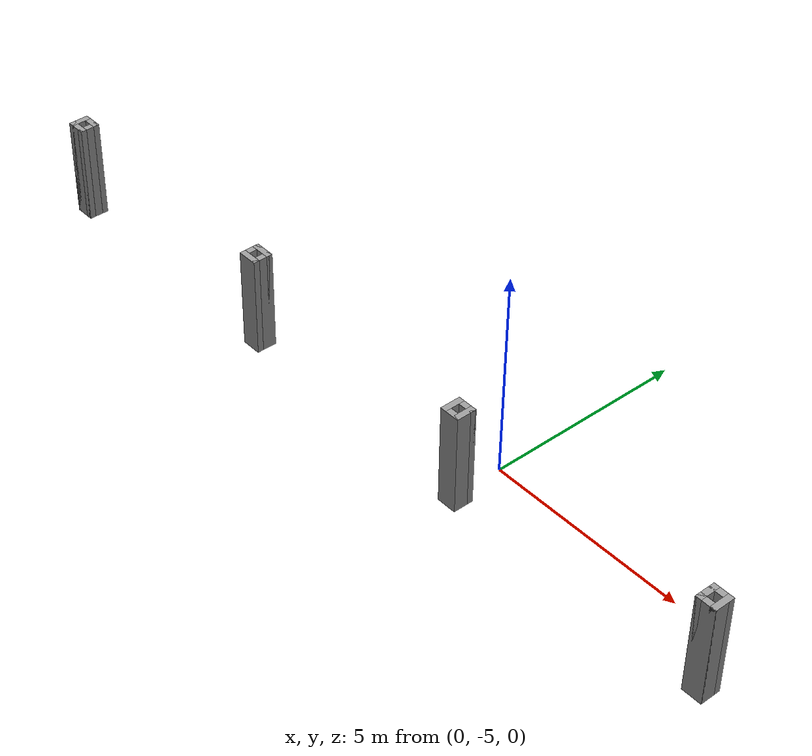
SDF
<?xml version='1.0'?>
<sdf version='1.6'>
  <model name='columns'>
    <pose frame=''>-3.23086 -6.27462 0 0 -0 0</pose>
    <link name='Wall_337'>
      <collision name='Wall_337_Collision'>
        <geometry>
          <box>
            <size>0.5 0.15 2.5</size>
          </box>
        </geometry>
        <pose frame=''>0 0 1.25 0 -0 0</pose>
      </collision>
      <visual name='Wall_337_Visual'>
        <pose frame=''>0 0 1.25 0 -0 0</pose>
        <geometry>
          <box>
            <size>0.5 0.15 2.5</size>
          </box>
        </geometry>
        <material>
          <script>
            <uri>file://media/materials/scripts/gazebo.material</uri>
            <name>Gazebo/Grey</name>
          </script>
          <ambient>1 1 1 1</ambient>
        </material>
        <meta>
          <layer>0</layer>
        </meta>
      </visual>
      <pose frame=''>9.87053 0.009422 0 0 0 -1.5708</pose>
    </link>
    <link name='Wall_338'>
      <collision name='Wall_338_Collision'>
        <geometry>
          <box>
            <size>0.5 0.15 2.5</size>
          </box>
        </geometry>
        <pose frame=''>0 0 1.25 0 -0 0</pose>
      </collision>
      <visual name='Wall_338_Visual'>
        <pose frame=''>0 0 1.25 0 -0 0</pose>
        <geometry>
          <box>
            <size>0.5 0.15 2.5</size>
          </box>
        </geometry>
        <material>
          <script>
            <uri>file://media/materials/scripts/gazebo.material</uri>
            <name>Gazebo/Grey</name>
          </script>
          <ambient>1 1 1 1</ambient>
        </material>
        <meta>
          <layer>0</layer>
        </meta>
      </visual>
      <pose frame=''>10.0455 -0.165578 0 0 -0 0</pose>
    </link>
    <link name='Wall_339'>
      <collision name='Wall_339_Collision'>
        <geometry>
          <box>
            <size>0.5 0.15 2.5</size>
          </box>
        </geometry>
        <pose frame=''>0 0 1.25 0 -0 0</pose>
      </collision>
      <visual name='Wall_339_Visual'>
        <pose frame=''>0 0 1.25 0 -0 0</pose>
        <geometry>
          <box>
            <size>0.5 0.15 2.5</size>
          </box>
        </geometry>
        <material>
          <script>
            <uri>file://media/materials/scripts/gazebo.material</uri>
            <name>Gazebo/Grey</name>
          </script>
          <ambient>1 1 1 1</ambient>
        </material>
        <meta>
          <layer>0</layer>
        </meta>
      </visual>
      <pose frame=''>10.2205 0.009422 0 0 -0 1.5708</pose>
    </link>
    <link name='Wall_340'>
      <collision name='Wall_340_Collision'>
        <geometry>
          <box>
            <size>0.5 0.15 2.5</size>
          </box>
        </geometry>
        <pose frame=''>0 0 1.25 0 -0 0</pose>
      </collision>
      <visual name='Wall_340_Visual'>
        <pose frame=''>0 0 1.25 0 -0 0</pose>
        <geometry>
          <box>
            <size>0.5 0.15 2.5</size>
          </box>
        </geometry>
        <material>
          <script>
            <uri>file://media/materials/scripts/gazebo.material</uri>
            <name>Gazebo/Grey</name>
          </script>
          <ambient>1 1 1 1</ambient>
        </material>
        <meta>
          <layer>0</layer>
        </meta>
      </visual>
      <pose frame=''>10.0455 0.184422 0 0 -0 3.14159</pose>
    </link>
    <link name='Wall_342'>
      <collision name='Wall_342_Collision'>
        <geometry>
          <box>
            <size>0.5 0.15 2.5</size>
          </box>
        </geometry>
        <pose frame=''>0 0 1.25 0 -0 0</pose>
      </collision>
      <visual name='Wall_342_Visual'>
        <pose frame=''>0 0 1.25 0 -0 0</pose>
        <geometry>
          <box>
            <size>0.5 0.15 2.5</size>
          </box>
        </geometry>
        <material>
          <script>
            <uri>file://media/materials/scripts/gazebo.material</uri>
            <name>Gazebo/Grey</name>
          </script>
          <ambient>1 1 1 1</ambient>
        </material>
        <meta>
          <layer>0</layer>
        </meta>
      </visual>
      <pose frame=''>3.13524 -0.056002 0 0 0 -1.5708</pose>
    </link>
    <link name='Wall_343'>
      <collision name='Wall_343_Collision'>
        <geometry>
          <box>
            <size>0.5 0.15 2.5</size>
          </box>
        </geometry>
        <pose frame=''>0 0 1.25 0 -0 0</pose>
      </collision>
      <visual name='Wall_343_Visual'>
        <pose frame=''>0 0 1.25 0 -0 0</pose>
        <geometry>
          <box>
            <size>0.5 0.15 2.5</size>
          </box>
        </geometry>
        <material>
          <script>
            <uri>file://media/materials/scripts/gazebo.material</uri>
            <name>Gazebo/Grey</name>
          </script>
          <ambient>1 1 1 1</ambient>
        </material>
        <meta>
          <layer>0</layer>
        </meta>
      </visual>
      <pose frame=''>3.31024 -0.231003 0 0 -0 0</pose>
    </link>
    <link name='Wall_344'>
      <collision name='Wall_344_Collision'>
        <geometry>
          <box>
            <size>0.5 0.15 2.5</size>
          </box>
        </geometry>
        <pose frame=''>0 0 1.25 0 -0 0</pose>
      </collision>
      <visual name='Wall_344_Visual'>
        <pose frame=''>0 0 1.25 0 -0 0</pose>
        <geometry>
          <box>
            <size>0.5 0.15 2.5</size>
          </box>
        </geometry>
        <material>
          <script>
            <uri>file://media/materials/scripts/gazebo.material</uri>
            <name>Gazebo/Grey</name>
          </script>
          <ambient>1 1 1 1</ambient>
        </material>
        <meta>
          <layer>0</layer>
        </meta>
      </visual>
      <pose frame=''>3.48524 -0.056002 0 0 -0 1.5708</pose>
    </link>
    <link name='Wall_345'>
      <collision name='Wall_345_Collision'>
        <geometry>
          <box>
            <size>0.5 0.15 2.5</size>
          </box>
        </geometry>
        <pose frame=''>0 0 1.25 0 -0 0</pose>
      </collision>
      <visual name='Wall_345_Visual'>
        <pose frame=''>0 0 1.25 0 -0 0</pose>
        <geometry>
          <box>
            <size>0.5 0.15 2.5</size>
          </box>
        </geometry>
        <material>
          <script>
            <uri>file://media/materials/scripts/gazebo.material</uri>
            <name>Gazebo/Grey</name>
          </script>
          <ambient>1 1 1 1</ambient>
        </material>
        <meta>
          <layer>0</layer>
        </meta>
      </visual>
      <pose frame=''>3.31024 0.118997 0 0 -0 3.14159</pose>
    </link>
    <link name='Wall_350'>
      <collision name='Wall_350_Collision'>
        <geometry>
          <box>
            <size>0.5 0.15 2.5</size>
          </box>
        </geometry>
        <pose frame=''>0 0 1.25 0 -0 0</pose>
      </collision>
      <visual name='Wall_350_Visual'>
        <pose frame=''>0 0 1.25 0 -0 0</pose>
        <geometry>
          <box>
            <size>0.5 0.15 2.5</size>
          </box>
        </geometry>
        <material>
          <script>
            <uri>file://media/materials/scripts/gazebo.material</uri>
            <name>Gazebo/Grey</name>
          </script>
          <ambient>1 1 1 1</ambient>
        </material>
        <meta>
          <layer>0</layer>
        </meta>
      </visual>
      <pose frame=''>-3.34038 0.200077 0 0 -0 0</pose>
    </link>
    <link name='Wall_351'>
      <collision name='Wall_351_Collision'>
        <geometry>
          <box>
            <size>0.5 0.15 2.5</size>
          </box>
        </geometry>
        <pose frame=''>0 0 1.25 0 -0 0</pose>
      </collision>
      <visual name='Wall_351_Visual'>
        <pose frame=''>0 0 1.25 0 -0 0</pose>
        <geometry>
          <box>
            <size>0.5 0.15 2.5</size>
          </box>
        </geometry>
        <material>
          <script>
            <uri>file://media/materials/scripts/gazebo.material</uri>
            <name>Gazebo/Grey</name>
          </script>
          <ambient>1 1 1 1</ambient>
        </material>
        <meta>
          <layer>0</layer>
        </meta>
      </visual>
      <pose frame=''>-3.16538 0.025078 0 0 0 -1.5708</pose>
    </link>
    <link name='Wall_352'>
      <collision name='Wall_352_Collision'>
        <geometry>
          <box>
            <size>0.5 0.15 2.5</size>
          </box>
        </geometry>
        <pose frame=''>0 0 1.25 0 -0 0</pose>
      </collision>
      <visual name='Wall_352_Visual'>
        <pose frame=''>0 0 1.25 0 -0 0</pose>
        <geometry>
          <box>
            <size>0.5 0.15 2.5</size>
          </box>
        </geometry>
        <material>
          <script>
            <uri>file://media/materials/scripts/gazebo.material</uri>
            <name>Gazebo/Grey</name>
          </script>
          <ambient>1 1 1 1</ambient>
        </material>
        <meta>
          <layer>0</layer>
        </meta>
      </visual>
      <pose frame=''>-3.34038 -0.149923 0 0 -0 3.14159</pose>
    </link>
    <link name='Wall_353'>
      <collision name='Wall_353_Collision'>
        <geometry>
          <box>
            <size>0.5 0.15 2.5</size>
          </box>
        </geometry>
        <pose frame=''>0 0 1.25 0 -0 0</pose>
      </collision>
      <visual name='Wall_353_Visual'>
        <pose frame=''>0 0 1.25 0 -0 0</pose>
        <geometry>
          <box>
            <size>0.5 0.15 2.5</size>
          </box>
        </geometry>
        <material>
          <script>
            <uri>file://media/materials/scripts/gazebo.material</uri>
            <name>Gazebo/Grey</name>
          </script>
          <ambient>1 1 1 1</ambient>
        </material>
        <meta>
          <layer>0</layer>
        </meta>
      </visual>
      <pose frame=''>-3.51538 0.025078 0 0 -0 1.5708</pose>
    </link>
    <link name='Wall_355'>
      <collision name='Wall_355_Collision'>
        <geometry>
          <box>
            <size>0.5 0.15 2.5</size>
          </box>
        </geometry>
        <pose frame=''>0 0 1.25 0 -0 0</pose>
      </collision>
      <visual name='Wall_355_Visual'>
        <pose frame=''>0 0 1.25 0 -0 0</pose>
        <geometry>
          <box>
            <size>0.5 0.15 2.5</size>
          </box>
        </geometry>
        <material>
          <script>
            <uri>file://media/materials/scripts/gazebo.material</uri>
            <name>Gazebo/Grey</name>
          </script>
          <ambient>1 1 1 1</ambient>
        </material>
        <meta>
          <layer>0</layer>
        </meta>
      </visual>
      <pose frame=''>-10.2205 0.056002 0 0 0 -1.5708</pose>
    </link>
    <link name='Wall_356'>
      <collision name='Wall_356_Collision'>
        <geometry>
          <box>
            <size>0.5 0.15 2.5</size>
          </box>
        </geometry>
        <pose frame=''>0 0 1.25 0 -0 0</pose>
      </collision>
      <visual name='Wall_356_Visual'>
        <pose frame=''>0 0 1.25 0 -0 0</pose>
        <geometry>
          <box>
            <size>0.5 0.15 2.5</size>
          </box>
        </geometry>
        <material>
          <script>
            <uri>file://media/materials/scripts/gazebo.material</uri>
            <name>Gazebo/Grey</name>
          </script>
          <ambient>1 1 1 1</ambient>
        </material>
        <meta>
          <layer>0</layer>
        </meta>
      </visual>
      <pose frame=''>-10.0455 -0.118998 0 0 -0 0</pose>
    </link>
    <link name='Wall_357'>
      <collision name='Wall_357_Collision'>
        <geometry>
          <box>
            <size>0.5 0.15 2.5</size>
          </box>
        </geometry>
        <pose frame=''>0 0 1.25 0 -0 0</pose>
      </collision>
      <visual name='Wall_357_Visual'>
        <pose frame=''>0 0 1.25 0 -0 0</pose>
        <geometry>
          <box>
            <size>0.5 0.15 2.5</size>
          </box>
        </geometry>
        <material>
          <script>
            <uri>file://media/materials/scripts/gazebo.material</uri>
            <name>Gazebo/Grey</name>
          </script>
          <ambient>1 1 1 1</ambient>
        </material>
        <meta>
          <layer>0</layer>
        </meta>
      </visual>
      <pose frame=''>-9.87053 0.056002 0 0 -0 1.5708</pose>
    </link>
    <link name='Wall_358'>
      <collision name='Wall_358_Collision'>
        <geometry>
          <box>
            <size>0.5 0.15 2.5</size>
          </box>
        </geometry>
        <pose frame=''>0 0 1.25 0 -0 0</pose>
      </collision>
      <visual name='Wall_358_Visual'>
        <pose frame=''>0 0 1.25 0 -0 0</pose>
        <geometry>
          <box>
            <size>0.5 0.15 2.5</size>
          </box>
        </geometry>
        <material>
          <script>
            <uri>file://media/materials/scripts/gazebo.material</uri>
            <name>Gazebo/Grey</name>
          </script>
          <ambient>1 1 1 1</ambient>
        </material>
        <meta>
          <layer>0</layer>
        </meta>
      </visual>
      <pose frame=''>-10.0455 0.231003 0 0 -0 3.14159</pose>
    </link>
    <static>1</static>
  </model>
</sdf>
